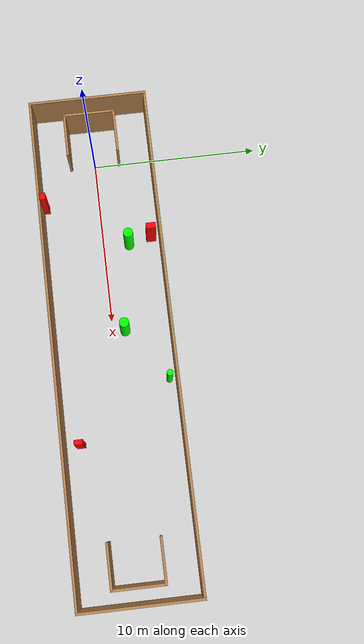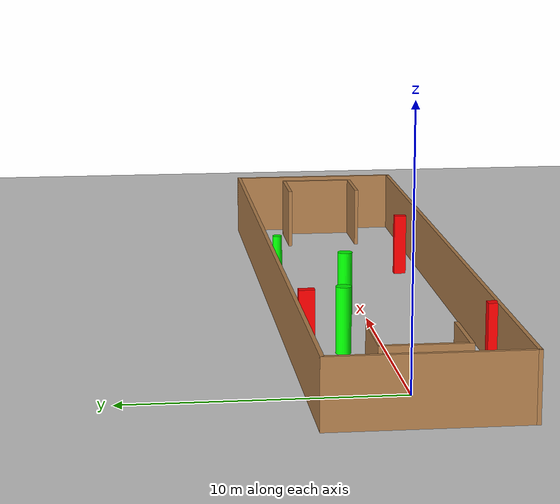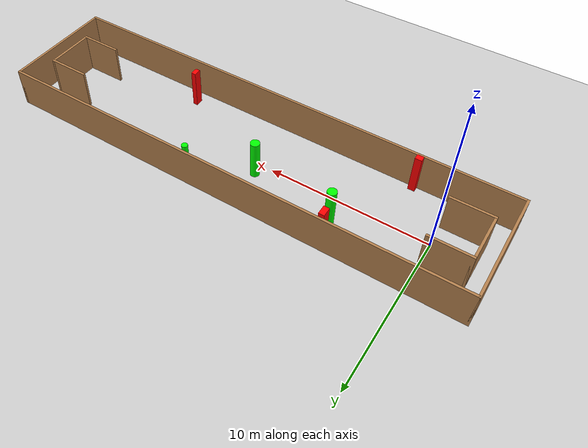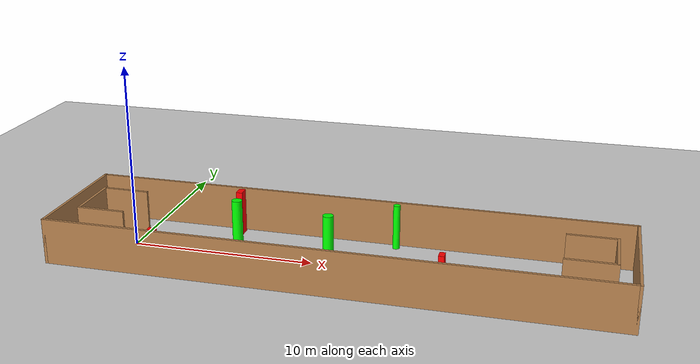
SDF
<sdf version="1.7">
 <world name="default">
  <light name="sun" type="directional">
   <pose>0 0 10 0 -0 0</pose>
   <diffuse>0.8 0.8 0.8 1</diffuse>
   <specular>0.2 0.2 0.2 1</specular>
   <attenuation>
    <range>1000</range>
    <constant>0.9</constant>
    <linear>0.01</linear>
    <quadratic>0.001</quadratic>
   </attenuation>
   <direction>-0.5 0.1 -0.9</direction>
   <spot><inner_angle>0</inner_angle><outer_angle>0</outer_angle><falloff>0</falloff></spot>
  </light>
  <model name="ground_plane">
   <static>1</static>
   <link name="link">
    <collision name="collision">
     <geometry><plane><normal>0 0 1</normal><size>100 100</size></plane></geometry>
     <surface>
      <contact><collide_bitmask>65535</collide_bitmask></contact>
      <friction><ode><mu>100</mu><mu2>50</mu2></ode></friction>
     </surface>
    </collision>
    <visual name="visual">
     <cast_shadows>0</cast_shadows>
     <geometry><plane><normal>0 0 1</normal><size>100 100</size></plane></geometry>
     <material>
      <script><uri>file://media/materials/scripts/gazebo.material</uri><name>Gazebo/Grey</name></script>
     </material>
    </visual>
   </link>
  </model>
  <gravity>0 0 -9.8</gravity>
  <magnetic_field>6e-06 2.3e-05 -4.2e-05</magnetic_field>
  <atmosphere type="adiabatic"/>
  <physics type="ode">
   <max_step_size>0.001</max_step_size>
   <real_time_factor>1</real_time_factor>
   <real_time_update_rate>1000</real_time_update_rate>
  </physics>
  <scene><ambient>0.4 0.4 0.4 1</ambient><background>0.7 0.7 0.7 1</background><shadows>1</shadows></scene>
  <spherical_coordinates>
   <surface_model>EARTH_WGS84</surface_model>
   <latitude_deg>0</latitude_deg>
   <longitude_deg>0</longitude_deg>
   <elevation>0</elevation>
   <heading_deg>0</heading_deg>
  </spherical_coordinates>
  <model name="my_base_walls">
   <link name="Wall_0">
    <collision name="Wall_0_Collision">
     <geometry><box><size>7.15 0.15 2.5</size></box></geometry>
     <pose>0 0 1.25 0 -0 0</pose>
    </collision>
    <visual name="Wall_0_Visual">
     <pose>0 0 1.25 0 -0 0</pose>
     <geometry><box><size>7.15 0.15 2.5</size></box></geometry>
     <material>
      <script><uri>file://media/materials/scripts/gazebo.material</uri><name>Gazebo/Wood</name></script>
      <ambient>1 1 1 1</ambient>
     </material>
     <meta><layer>0</layer></meta>
    </visual>
    <pose>-15 0 0 0 -0 1.5708</pose>
   </link>
   <link name="Wall_10">
    <collision name="Wall_10_Collision">
     <geometry><box><size>2.65 0.15 2.5</size></box></geometry>
     <pose>0 0 1.25 0 -0 0</pose>
    </collision>
    <visual name="Wall_10_Visual">
     <pose>0 0 1.25 0 -0 0</pose>
     <geometry><box><size>2.65 0.15 2.5</size></box></geometry>
     <material>
      <script><uri>file://media/materials/scripts/gazebo.material</uri><name>Gazebo/Wood</name></script>
      <ambient>1 1 1 1</ambient>
     </material>
     <meta><layer>0</layer></meta>
    </visual>
    <pose>-12.75 -1.5 0 0 -0 0</pose>
   </link>
   <link name="Wall_12">
    <collision name="Wall_12_Collision">
     <geometry><box><size>2.65 0.15 2.5</size></box></geometry>
     <pose>0 0 1.25 0 -0 0</pose>
    </collision>
    <visual name="Wall_12_Visual">
     <pose>0 0 1.25 0 -0 0</pose>
     <geometry><box><size>2.65 0.15 2.5</size></box></geometry>
     <material>
      <script><uri>file://media/materials/scripts/gazebo.material</uri><name>Gazebo/Wood</name></script>
      <ambient>1 1 1 1</ambient>
     </material>
     <meta><layer>0</layer></meta>
    </visual>
    <pose>-12.75 1.5 0 0 -0 0</pose>
   </link>
   <link name="Wall_14">
    <collision name="Wall_14_Collision">
     <geometry><box><size>3.15 0.15 2.5</size></box></geometry>
     <pose>0 0 1.25 0 -0 0</pose>
    </collision>
    <visual name="Wall_14_Visual">
     <pose>0 0 1.25 0 -0 0</pose>
     <geometry><box><size>3.15 0.15 2.5</size></box></geometry>
     <material>
      <script><uri>file://media/materials/scripts/gazebo.material</uri><name>Gazebo/Wood</name></script>
      <ambient>1 1 1 1</ambient>
     </material>
     <meta><layer>0</layer></meta>
    </visual>
    <pose>14 0 0 0 -0 -1.5708</pose>
   </link>
   <link name="Wall_15">
    <collision name="Wall_15_Collision">
     <geometry><box><size>2.65 0.15 2.5</size></box></geometry>
     <pose>0 0 1.25 0 -0 0</pose>
    </collision>
    <visual name="Wall_15_Visual">
     <pose>0 0 1.25 0 -0 0</pose>
     <geometry><box><size>2.65 0.15 2.5</size></box></geometry>
     <material>
      <script><uri>file://media/materials/scripts/gazebo.material</uri><name>Gazebo/Wood</name></script>
      <ambient>1 1 1 1</ambient>
     </material>
     <meta><layer>0</layer></meta>
    </visual>
    <pose>12.75 -1.5 0 0 -0 3.14159</pose>
   </link>
   <link name="Wall_17">
    <collision name="Wall_17_Collision">
     <geometry><box><size>2.65 0.15 2.5</size></box></geometry>
     <pose>0 0 1.25 0 -0 0</pose>
    </collision>
    <visual name="Wall_17_Visual">
     <pose>0 0 1.25 0 -0 0</pose>
     <geometry><box><size>2.65 0.15 2.5</size></box></geometry>
     <material>
      <script><uri>file://media/materials/scripts/gazebo.material</uri><name>Gazebo/Wood</name></script>
      <ambient>1 1 1 1</ambient>
     </material>
     <meta><layer>0</layer></meta>
    </visual>
    <pose>12.75 1.5 0 0 -0 3.14159</pose>
   </link>
   <link name="Wall_2">
    <collision name="Wall_2_Collision">
     <geometry><box><size>30.15 0.15 2.5</size></box></geometry>
     <pose>0 0 1.25 0 -0 0</pose>
    </collision>
    <visual name="Wall_2_Visual">
     <pose>0 0 1.25 0 -0 0</pose>
     <geometry><box><size>30.15 0.15 2.5</size></box></geometry>
     <material>
      <script><uri>file://media/materials/scripts/gazebo.material</uri><name>Gazebo/Wood</name></script>
      <ambient>1 1 1 1</ambient>
     </material>
     <meta><layer>0</layer></meta>
    </visual>
    <pose>-0 -3.5 0 0 -0 0</pose>
   </link>
   <link name="Wall_4">
    <collision name="Wall_4_Collision">
     <geometry><box><size>30.15 0.15 2.5</size></box></geometry>
     <pose>0 0 1.25 0 -0 0</pose>
    </collision>
    <visual name="Wall_4_Visual">
     <pose>0 0 1.25 0 -0 0</pose>
     <geometry><box><size>30.15 0.15 2.5</size></box></geometry>
     <material>
      <script><uri>file://media/materials/scripts/gazebo.material</uri><name>Gazebo/Wood</name></script>
      <ambient>1 1 1 1</ambient>
     </material>
     <meta><layer>0</layer></meta>
    </visual>
    <pose>-0 3.5 0 0 -0 0</pose>
   </link>
   <link name="Wall_6">
    <collision name="Wall_6_Collision">
     <geometry><box><size>7.15 0.15 2.5</size></box></geometry>
     <pose>0 0 1.25 0 -0 0</pose>
    </collision>
    <visual name="Wall_6_Visual">
     <pose>0 0 1.25 0 -0 0</pose>
     <geometry><box><size>7.15 0.15 2.5</size></box></geometry>
     <material>
      <script><uri>file://media/materials/scripts/gazebo.material</uri><name>Gazebo/Wood</name></script>
      <ambient>1 1 1 1</ambient>
     </material>
     <meta><layer>0</layer></meta>
    </visual>
    <pose>15 0 0 0 -0 -1.5708</pose>
   </link>
   <link name="Wall_9">
    <collision name="Wall_9_Collision">
     <geometry><box><size>3.15 0.15 2.5</size></box></geometry>
     <pose>0 0 1.25 0 -0 0</pose>
    </collision>
    <visual name="Wall_9_Visual">
     <pose>0 0 1.25 0 -0 0</pose>
     <geometry><box><size>3.15 0.15 2.5</size></box></geometry>
     <material>
      <script><uri>file://media/materials/scripts/gazebo.material</uri><name>Gazebo/Wood</name></script>
      <ambient>1 1 1 1</ambient>
     </material>
     <meta><layer>0</layer></meta>
    </visual>
    <pose>-14 0 0 0 -0 -1.5708</pose>
   </link>
   <static>1</static>
   <pose>11.5 0 0 0 -0 0</pose>
  </model>
  <model name="cylinder1">
   <static>1</static>
   <link name="link">
    <inertial>
     <mass>1</mass>
     <inertia><ixx>0.5</ixx><ixy>0</ixy><ixz>0</ixz><iyy>0.5</iyy><iyz>0</iyz><izz>1</izz></inertia>
    </inertial>
    <collision name="collision">
     <geometry><cylinder><radius>0.2899144093528381</radius><length>2.5</length></cylinder></geometry>
    </collision>
    <visual name="visual">
     <geometry><cylinder><radius>0.2899144093528381</radius><length>2.5</length></cylinder></geometry>
     <material>
      <ambient>0 1 0 1</ambient>
      <diffuse>0 1 0 1</diffuse>
      <specular>0.1 0.1 0.1 1</specular>
      <emissive>0 0 0 0</emissive>
     </material>
    </visual>
   </link>
   <pose>10.72651667470251 0.7532352057174512 1.25 0 0 0</pose>
  </model>
  <model name="cylinder2">
   <static>1</static>
   <link name="link">
    <inertial>
     <mass>1</mass>
     <inertia><ixx>0.5</ixx><ixy>0</ixy><ixz>0</ixz><iyy>0.5</iyy><iyz>0</iyz><izz>1</izz></inertia>
    </inertial>
    <collision name="collision">
     <geometry><cylinder><radius>0.1888224343795514</radius><length>2.5</length></cylinder></geometry>
    </collision>
    <visual name="visual">
     <geometry><cylinder><radius>0.1888224343795514</radius><length>2.5</length></cylinder></geometry>
     <material>
      <ambient>0 1 0 1</ambient>
      <diffuse>0 1 0 1</diffuse>
      <specular>0.1 0.1 0.1 1</specular>
      <emissive>0 0 0 0</emissive>
     </material>
    </visual>
   </link>
   <pose>13.9407281778429 3.0570295673971604 1.25 0 0 0</pose>
  </model>
  <model name="cylinder3">
   <static>1</static>
   <link name="link">
    <inertial>
     <mass>1</mass>
     <inertia><ixx>0.5</ixx><ixy>0</ixy><ixz>0</ixz><iyy>0.5</iyy><iyz>0</iyz><izz>1</izz></inertia>
    </inertial>
    <collision name="collision">
     <geometry><cylinder><radius>0.2890484508189935</radius><length>2.5</length></cylinder></geometry>
    </collision>
    <visual name="visual">
     <geometry><cylinder><radius>0.2890484508189935</radius><length>2.5</length></cylinder></geometry>
     <material>
      <ambient>0 1 0 1</ambient>
      <diffuse>0 1 0 1</diffuse>
      <specular>0.1 0.1 0.1 1</specular>
      <emissive>0 0 0 0</emissive>
     </material>
    </visual>
   </link>
   <pose>5.341989083821423 1.5644827628163753 1.25 0 0 0</pose>
  </model>
  <model name="box1">
   <static>1</static>
   <link name="link">
    <inertial>
     <mass>1</mass>
     <inertia><ixx>0.083</ixx><ixy>0</ixy><ixz>0</ixz><iyy>0.083</iyy><iyz>0</iyz><izz>0.083</izz></inertia>
    </inertial>
    <collision name="collision">
     <geometry><box><size>0.42015410450216967 0.36338611776976476 2.5</size></box></geometry>
    </collision>
    <visual name="visual">
     <geometry><box><size>0.42015410450216967 0.36338611776976476 2.5</size></box></geometry>
     <material>
      <ambient>1 0 0 1</ambient>
      <diffuse>1 0 0 1</diffuse>
      <specular>0.1 0.1 0.1 1</specular>
      <emissive>0 0 0 0</emissive>
     </material>
    </visual>
    <sensor name="my_contact" type="contact">
     <contact><collision>box_collision</collision><topic>__default_topic__</topic></contact>
    </sensor>
   </link>
   <pose>2.522685133679367 -3.2730973870119655 1.25 0 0 0</pose>
  </model>
  <model name="box2">
   <static>1</static>
   <link name="link">
    <inertial>
     <mass>1</mass>
     <inertia><ixx>0.083</ixx><ixy>0</ixy><ixz>0</ixz><iyy>0.083</iyy><iyz>0</iyz><izz>0.083</izz></inertia>
    </inertial>
    <collision name="collision">
     <geometry><box><size>0.293731219655674 0.4920175837679725 2.5</size></box></geometry>
    </collision>
    <visual name="visual">
     <geometry><box><size>0.293731219655674 0.4920175837679725 2.5</size></box></geometry>
     <material>
      <ambient>1 0 0 1</ambient>
      <diffuse>1 0 0 1</diffuse>
      <specular>0.1 0.1 0.1 1</specular>
      <emissive>0 0 0 0</emissive>
     </material>
    </visual>
    <sensor name="my_contact" type="contact">
     <contact><collision>box_collision</collision><topic>__default_topic__</topic></contact>
    </sensor>
   </link>
   <pose>17.299966216839785 -2.5277143653511334 1.25 0 0 0</pose>
  </model>
  <model name="box3">
   <static>1</static>
   <link name="link">
    <inertial>
     <mass>1</mass>
     <inertia><ixx>0.083</ixx><ixy>0</ixy><ixz>0</ixz><iyy>0.083</iyy><iyz>0</iyz><izz>0.083</izz></inertia>
    </inertial>
    <collision name="collision">
     <geometry><box><size>0.3525338346527397 0.5949450392084039 2.5</size></box></geometry>
    </collision>
    <visual name="visual">
     <geometry><box><size>0.3525338346527397 0.5949450392084039 2.5</size></box></geometry>
     <material>
      <ambient>1 0 0 1</ambient>
      <diffuse>1 0 0 1</diffuse>
      <specular>0.1 0.1 0.1 1</specular>
      <emissive>0 0 0 0</emissive>
     </material>
    </visual>
    <sensor name="my_contact" type="contact">
     <contact><collision>box_collision</collision><topic>__default_topic__</topic></contact>
    </sensor>
   </link>
   <pose>5.062254858328892 2.948606604468835 1.25 0 0 0</pose>
  </model>
 </world>
</sdf>
